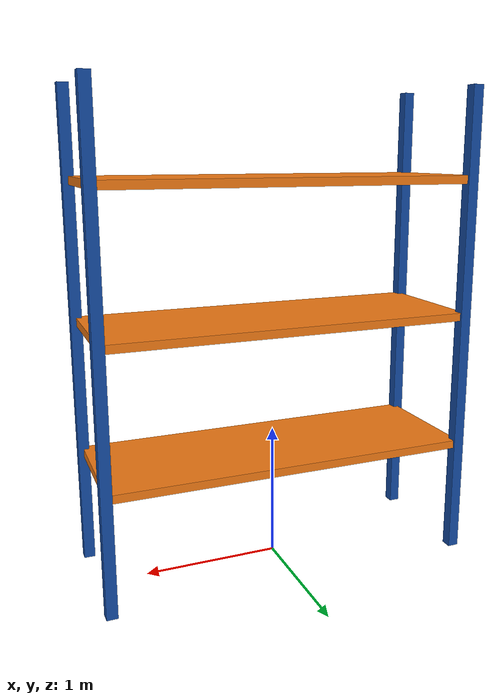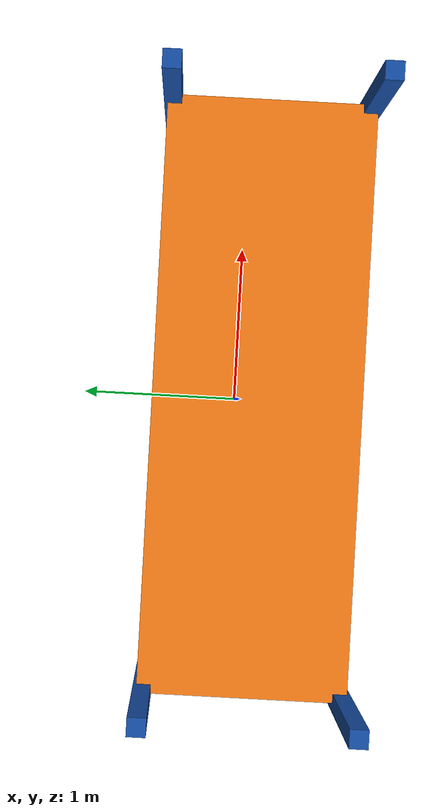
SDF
<?xml version="1.0" ?>
<sdf version="1.6">
  <model name="pallet_rack">
    <static>true</static>
    <link name="rack_structure">
      <!-- Upright Column: Left Front -->
      <visual name="upright_lf">
        <pose>-1.35 -0.45 1.75 0 0 0</pose>
        <geometry><box><size>0.08 0.08 3.5</size></box></geometry>
        <material>
          <ambient>0.05 0.20 0.50 1.0</ambient>
          <diffuse>0.08 0.30 0.65 1.0</diffuse>
          <specular>0.2 0.2 0.2 1.0</specular>
        </material>
      </visual>

      <!-- Upright Column: Left Rear -->
      <visual name="upright_lr">
        <pose>-1.35 0.45 1.75 0 0 0</pose>
        <geometry><box><size>0.08 0.08 3.5</size></box></geometry>
        <material>
          <ambient>0.05 0.20 0.50 1.0</ambient>
          <diffuse>0.08 0.30 0.65 1.0</diffuse>
          <specular>0.2 0.2 0.2 1.0</specular>
        </material>
      </visual>

      <!-- Upright Column: Right Front -->
      <visual name="upright_rf">
        <pose>1.35 -0.45 1.75 0 0 0</pose>
        <geometry><box><size>0.08 0.08 3.5</size></box></geometry>
        <material>
          <ambient>0.05 0.20 0.50 1.0</ambient>
          <diffuse>0.08 0.30 0.65 1.0</diffuse>
          <specular>0.2 0.2 0.2 1.0</specular>
        </material>
      </visual>

      <!-- Upright Column: Right Rear -->
      <visual name="upright_rr">
        <pose>1.35 0.45 1.75 0 0 0</pose>
        <geometry><box><size>0.08 0.08 3.5</size></box></geometry>
        <material>
          <ambient>0.05 0.20 0.50 1.0</ambient>
          <diffuse>0.08 0.30 0.65 1.0</diffuse>
          <specular>0.2 0.2 0.2 1.0</specular>
        </material>
      </visual>

      <!-- Shelf Tier 1: Lower Deck (Orange Cross Beams & Deck) -->
      <visual name="shelf_deck_1">
        <pose>0 0 0.85 0 0 0</pose>
        <geometry><box><size>2.70 0.95 0.06</size></box></geometry>
        <material>
          <ambient>0.85 0.40 0.05 1.0</ambient>
          <diffuse>0.95 0.48 0.08 1.0</diffuse>
          <specular>0.1 0.1 0.1 1.0</specular>
        </material>
      </visual>

      <!-- Shelf Tier 2: Middle Deck -->
      <visual name="shelf_deck_2">
        <pose>0 0 1.85 0 0 0</pose>
        <geometry><box><size>2.70 0.95 0.06</size></box></geometry>
        <material>
          <ambient>0.85 0.40 0.05 1.0</ambient>
          <diffuse>0.95 0.48 0.08 1.0</diffuse>
          <specular>0.1 0.1 0.1 1.0</specular>
        </material>
      </visual>

      <!-- Shelf Tier 3: Top Deck -->
      <visual name="shelf_deck_3">
        <pose>0 0 2.85 0 0 0</pose>
        <geometry><box><size>2.70 0.95 0.06</size></box></geometry>
        <material>
          <ambient>0.85 0.40 0.05 1.0</ambient>
          <diffuse>0.95 0.48 0.08 1.0</diffuse>
          <specular>0.1 0.1 0.1 1.0</specular>
        </material>
      </visual>

      <!-- Individual collisions for legs to allow AMR to drive underneath -->
      <collision name="col_upright_lf">
        <pose>-1.35 -0.45 1.75 0 0 0</pose>
        <geometry><box><size>0.08 0.08 3.5</size></box></geometry>
      </collision>
      <collision name="col_upright_lr">
        <pose>-1.35 0.45 1.75 0 0 0</pose>
        <geometry><box><size>0.08 0.08 3.5</size></box></geometry>
      </collision>
      <collision name="col_upright_rf">
        <pose>1.35 -0.45 1.75 0 0 0</pose>
        <geometry><box><size>0.08 0.08 3.5</size></box></geometry>
      </collision>
      <collision name="col_upright_rr">
        <pose>1.35 0.45 1.75 0 0 0</pose>
        <geometry><box><size>0.08 0.08 3.5</size></box></geometry>
      </collision>
    </link>
  </model>
</sdf>
